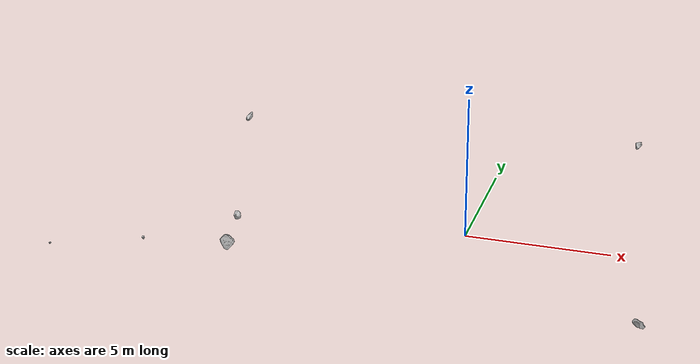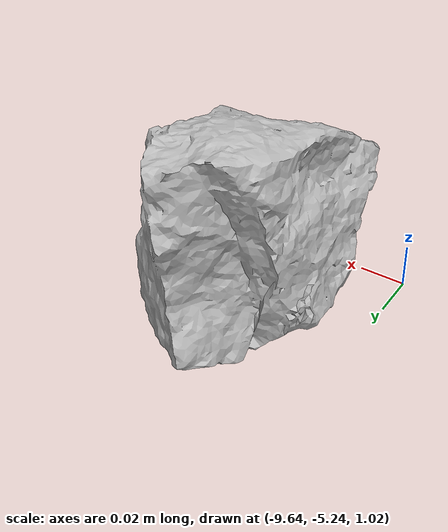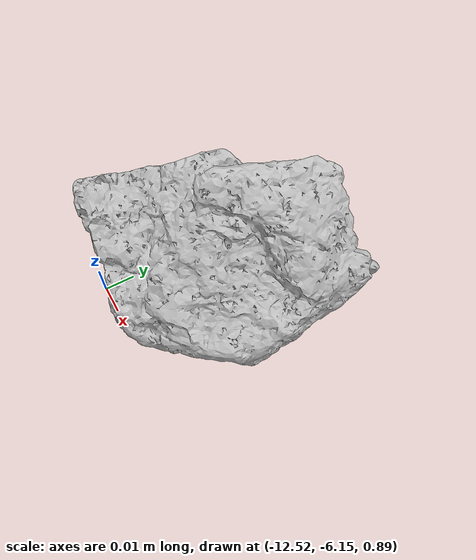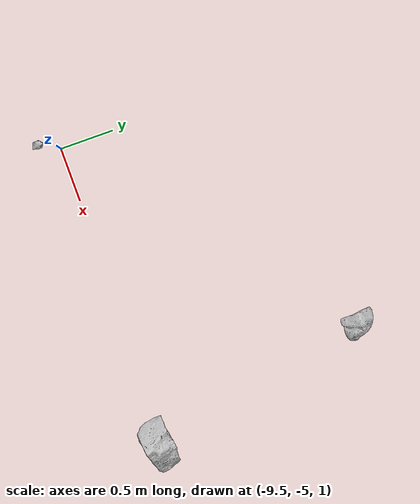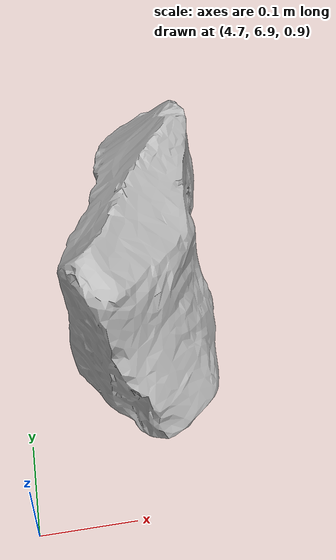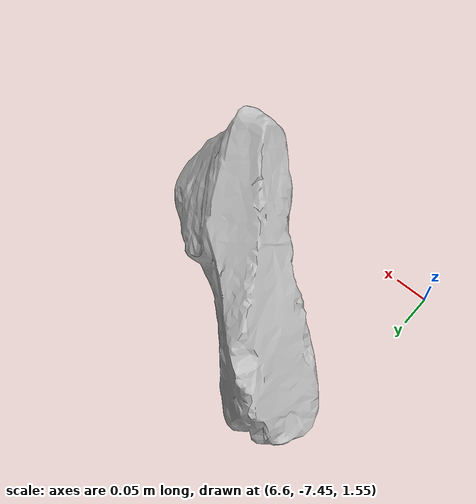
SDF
<sdf version="1.7">
 <world name="marsyard">
  <gravity>0 0 -9.81</gravity>
  <physics name="dart_physics" type="ignored">
   <max_step_size>0.003</max_step_size>
   <real_time_update_rate>333</real_time_update_rate>
   <real_time_factor>1.0</real_time_factor>
  </physics>
  <plugin filename="ignition-gazebo-physics-system" name="ignition::gazebo::systems::Physics"/>
  <plugin filename="ignition-gazebo-user-commands-system" name="ignition::gazebo::systems::UserCommands"/>
  <plugin filename="ignition-gazebo-scene-broadcaster-system" name="ignition::gazebo::systems::SceneBroadcaster"/>
  <plugin filename="ignition-gazebo-contact-system" name="ignition::gazebo::systems::Contact"/>
  <plugin filename="ignition-gazebo-sensors-system" name="ignition::gazebo::systems::Sensors">
   <render_engine>ogre2</render_engine>
  </plugin>
  <plugin filename="ignition-gazebo-imu-system" name="ignition::gazebo::systems::Imu"/>
  <plugin filename="ignition-gazebo-magnetometer-system" name="ignition::gazebo::systems::Magnetometer"/>
  <scene>
   <ambient>0.95 0.95 0.95 1</ambient>
   <background>0.70 0.70 0.70 1</background>
   <shadows>false</shadows>
  </scene>
  <light type="directional" name="sun">
   <cast_shadows>false</cast_shadows>
   <pose>0 0 30 0 0 0</pose>
   <diffuse>1 1 1 1</diffuse>
   <specular>0.15 0.15 0.15 1</specular>
   <direction>-0.35 0.1 -0.93</direction>
  </light>
  <model name="Rock_1">
   <static>true</static>
   <pose>6.7520 -7.3228 1.6414 0.0000 0.0000 -0.7525</pose>
   <link name="link">
    <visual name="visual">
     <geometry><mesh><uri>package://rock_generator/rocks_ws/rock_4/meshes/rock_4.obj</uri></mesh></geometry>
    </visual>
    <collision name="collision">
     <geometry><mesh><uri>package://rock_generator/rocks_ws/rock_4/meshes/rock_4.obj</uri></mesh></geometry>
    </collision>
   </link>
  </model>
  <model name="Rock_2">
   <static>true</static>
   <pose>-9.5978 -5.1782 1.0733 0.0000 0.0000 1.4637</pose>
   <link name="link">
    <visual name="visual">
     <geometry><mesh><uri>package://rock_generator/rocks_ws/rock_9/meshes/rock_9.obj</uri></mesh></geometry>
    </visual>
    <collision name="collision">
     <geometry><mesh><uri>package://rock_generator/rocks_ws/rock_9/meshes/rock_9.obj</uri></mesh></geometry>
    </collision>
   </link>
  </model>
  <model name="Rock_4">
   <static>true</static>
   <pose>-7.2090 -3.0240 1.1930 0.0000 0.0000 -1.5163</pose>
   <link name="link">
    <visual name="visual">
     <geometry><mesh><uri>package://rock_generator/rocks_ws/rock_3/meshes/rock_3.obj</uri></mesh></geometry>
    </visual>
   </link>
  </model>
  <model name="Rock_5">
   <static>true</static>
   <pose>-6.7017 -5.1894 1.2612 0.0000 0.0000 0.2351</pose>
   <link name="link">
    <visual name="visual">
     <geometry><mesh><uri>package://rock_generator/rocks_ws/rock_1/meshes/rock_1.obj</uri></mesh></geometry>
    </visual>
    <collision name="collision">
     <geometry><mesh><uri>package://rock_generator/rocks_ws/rock_1/meshes/rock_1.obj</uri></mesh></geometry>
    </collision>
   </link>
  </model>
  <model name="Rock_6">
   <static>true</static>
   <pose>4.7880 7.2126 1.0068 0.0000 0.0000 -1.8239</pose>
   <link name="link">
    <visual name="visual">
     <geometry><mesh><uri>package://rock_generator/rocks_ws/rock_4/meshes/rock_4.obj</uri></mesh></geometry>
    </visual>
   </link>
  </model>
  <model name="Rock_7">
   <static>true</static>
   <pose>-12.4865 -6.1230 0.9195 0.0000 0.0000 -2.2488</pose>
   <link name="link">
    <visual name="visual">
     <geometry><mesh><uri>package://rock_generator/rocks_ws/rock_5/meshes/rock_5.obj</uri></mesh></geometry>
    </visual>
    <collision name="collision">
     <geometry><mesh><uri>package://rock_generator/rocks_ws/rock_5/meshes/rock_5.obj</uri></mesh></geometry>
    </collision>
   </link>
  </model>
  <model name="Rock_8">
   <static>true</static>
   <pose>-9.6996 5.3120 1.1764 0.0000 0.0000 1.4993</pose>
   <link name="link">
    <visual name="visual">
     <geometry><mesh><uri>package://rock_generator/rocks_ws/rock_4/meshes/rock_4.obj</uri></mesh></geometry>
    </visual>
   </link>
  </model>
 </world>
</sdf>
